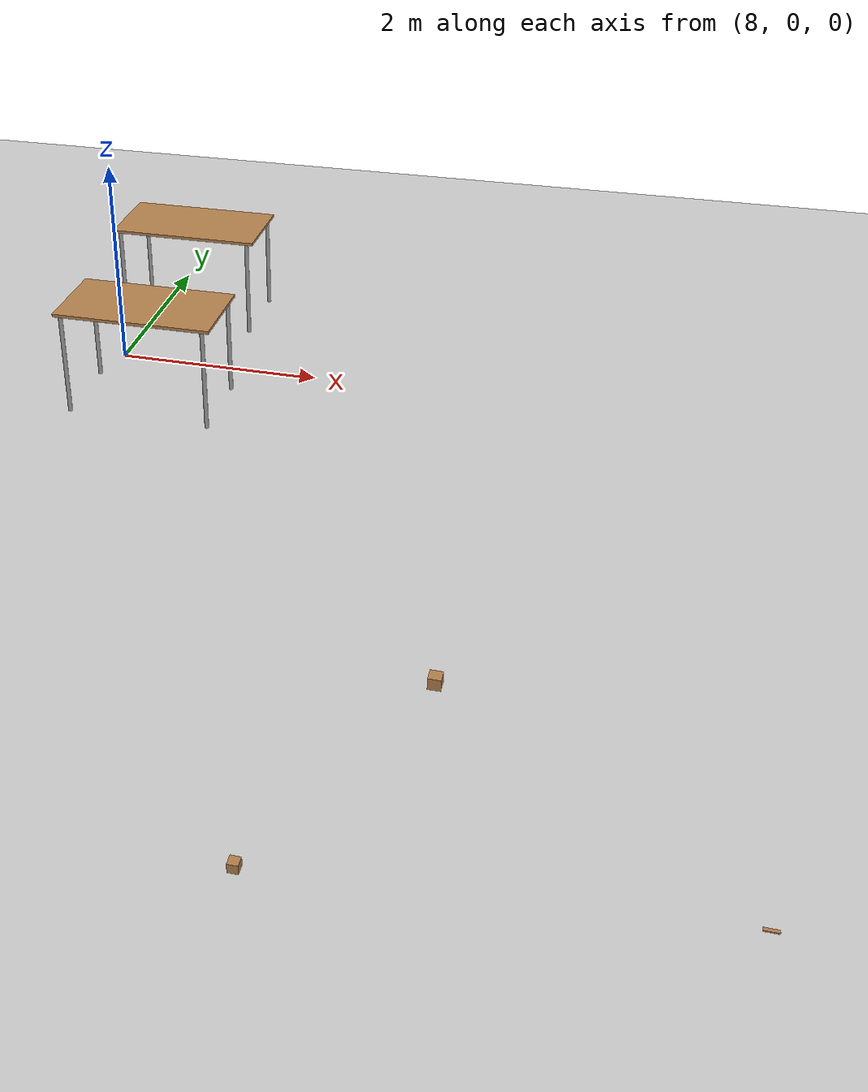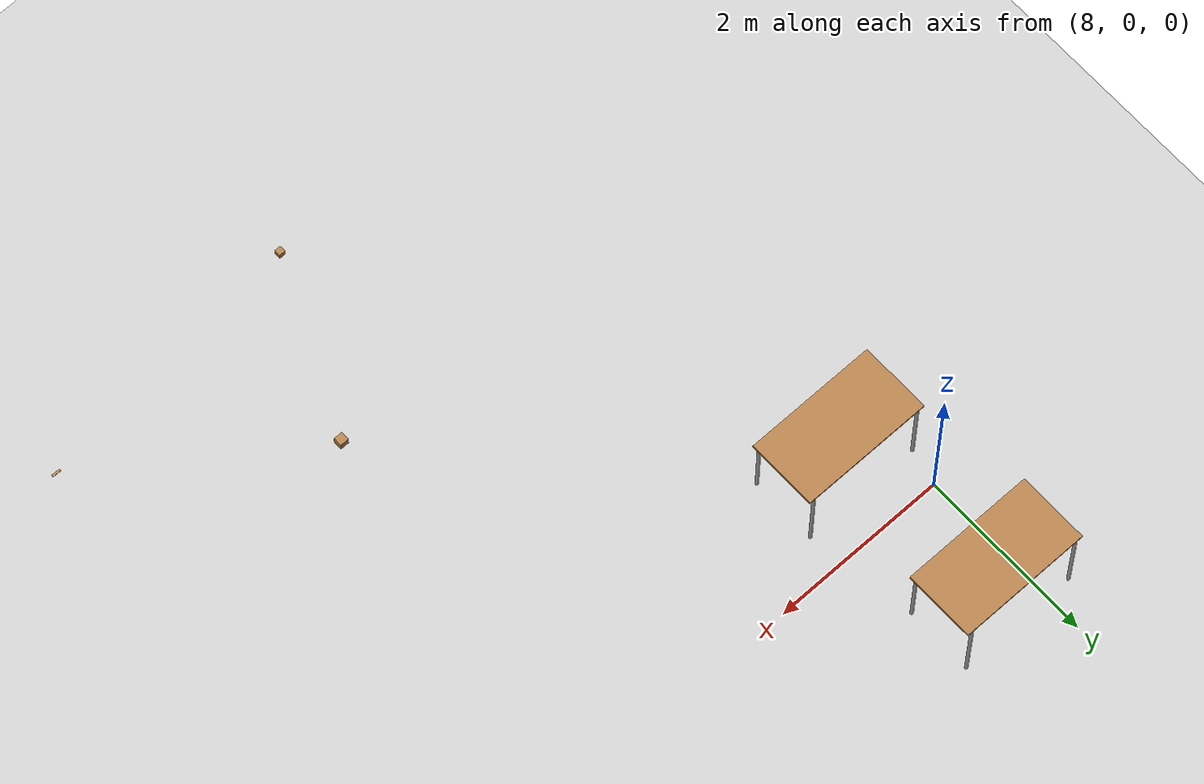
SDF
<sdf version="1.6">
 <world name="default">
  <model name="ground_plane">
   <static>1</static>
   <link name="link">
    <collision name="collision">
     <geometry><plane><normal>0 0 1</normal><size>100 100</size></plane></geometry>
     <surface>
      <contact><collide_bitmask>65535</collide_bitmask></contact>
      <friction><ode><mu>100</mu><mu2>50</mu2></ode></friction>
     </surface>
    </collision>
    <visual name="visual">
     <cast_shadows>0</cast_shadows>
     <geometry><plane><normal>0 0 1</normal><size>100 100</size></plane></geometry>
     <material>
      <script><uri>file://media/materials/scripts/gazebo.material</uri><name>Gazebo/Grey</name></script>
     </material>
    </visual>
   </link>
  </model>
  <model name="wood_cube_10cm">
   <link name="link">
    <pose>0 0 0.05 0 -0 0</pose>
    <inertial>
     <mass>0.5167</mass>
     <inertia>
      <ixx>0.000861167</ixx>
      <ixy>0</ixy>
      <ixz>0</ixz>
      <iyy>0.000861167</iyy>
      <iyz>0</iyz>
      <izz>0.000861167</izz>
     </inertia>
    </inertial>
    <collision name="collision">
     <geometry><box><size>0.1 0.1 0.1</size></box></geometry>
     <surface>
      <contact>
       <poissons_ratio>0.347</poissons_ratio>
       <elastic_modulus>8.8e+09</elastic_modulus>
       <ode><kp>100000</kp><kd>100</kd><max_vel>100</max_vel><min_depth>0.001</min_depth></ode>
      </contact>
      <friction>
       <torsional>
        <coefficient>1</coefficient>
        <use_patch_radius>0</use_patch_radius>
        <surface_radius>0.01</surface_radius>
       </torsional>
      </friction>
     </surface>
    </collision>
    <visual name="visual">
     <geometry><box><size>0.1 0.1 0.1</size></box></geometry>
     <material>
      <script><uri>file://media/materials/scripts/gazebo.material</uri><name>Gazebo/Wood</name></script>
     </material>
    </visual>
   </link>
   <pose>11.9568 -4.2046 -0.001013 0 -0 0</pose>
  </model>
  <model name="table">
   <static>1</static>
   <link name="link">
    <collision name="surface">
     <pose>0 0 1 0 -0 0</pose>
     <geometry><box><size>1.5 0.8 0.03</size></box></geometry>
     <surface><friction><ode><mu>0.6</mu><mu2>0.6</mu2></ode></friction></surface>
    </collision>
    <visual name="visual1">
     <pose>0 0 1 0 -0 0</pose>
     <geometry><box><size>1.5 0.8 0.03</size></box></geometry>
     <material>
      <script><uri>file://media/materials/scripts/gazebo.material</uri><name>Gazebo/Wood</name></script>
     </material>
    </visual>
    <collision name="front_left_leg">
     <pose>0.68 0.38 0.5 0 -0 0</pose>
     <geometry><cylinder><radius>0.02</radius><length>1</length></cylinder></geometry>
    </collision>
    <visual name="front_left_leg">
     <pose>0.68 0.38 0.5 0 -0 0</pose>
     <geometry><cylinder><radius>0.02</radius><length>1</length></cylinder></geometry>
     <material>
      <script><uri>file://media/materials/scripts/gazebo.material</uri><name>Gazebo/Grey</name></script>
     </material>
    </visual>
    <collision name="front_right_leg">
     <pose>0.68 -0.38 0.5 0 -0 0</pose>
     <geometry><cylinder><radius>0.02</radius><length>1</length></cylinder></geometry>
    </collision>
    <visual name="front_right_leg">
     <pose>0.68 -0.38 0.5 0 -0 0</pose>
     <geometry><cylinder><radius>0.02</radius><length>1</length></cylinder></geometry>
     <material>
      <script><uri>file://media/materials/scripts/gazebo.material</uri><name>Gazebo/Grey</name></script>
     </material>
    </visual>
    <collision name="back_right_leg">
     <pose>-0.68 -0.38 0.5 0 -0 0</pose>
     <geometry><cylinder><radius>0.02</radius><length>1</length></cylinder></geometry>
    </collision>
    <visual name="back_right_leg">
     <pose>-0.68 -0.38 0.5 0 -0 0</pose>
     <geometry><cylinder><radius>0.02</radius><length>1</length></cylinder></geometry>
     <material>
      <script><uri>file://media/materials/scripts/gazebo.material</uri><name>Gazebo/Grey</name></script>
     </material>
    </visual>
    <collision name="back_left_leg">
     <pose>-0.68 0.38 0.5 0 -0 0</pose>
     <geometry><cylinder><radius>0.02</radius><length>1</length></cylinder></geometry>
    </collision>
    <visual name="back_left_leg">
     <pose>-0.68 0.38 0.5 0 -0 0</pose>
     <geometry><cylinder><radius>0.02</radius><length>1</length></cylinder></geometry>
     <material>
      <script><uri>file://media/materials/scripts/gazebo.material</uri><name>Gazebo/Grey</name></script>
     </material>
    </visual>
   </link>
   <pose>8.39393 1.19948 0 0 -0 0</pose>
  </model>
  <model name="table_0">
   <static>1</static>
   <link name="link">
    <collision name="surface">
     <pose>0 0 1 0 -0 0</pose>
     <geometry><box><size>1.5 0.8 0.03</size></box></geometry>
     <surface><friction><ode><mu>0.6</mu><mu2>0.6</mu2></ode></friction></surface>
    </collision>
    <visual name="visual1">
     <pose>0 0 1 0 -0 0</pose>
     <geometry><box><size>1.5 0.8 0.03</size></box></geometry>
     <material>
      <script><uri>file://media/materials/scripts/gazebo.material</uri><name>Gazebo/Wood</name></script>
     </material>
    </visual>
    <collision name="front_left_leg">
     <pose>0.68 0.38 0.5 0 -0 0</pose>
     <geometry><cylinder><radius>0.02</radius><length>1</length></cylinder></geometry>
    </collision>
    <visual name="front_left_leg">
     <pose>0.68 0.38 0.5 0 -0 0</pose>
     <geometry><cylinder><radius>0.02</radius><length>1</length></cylinder></geometry>
     <material>
      <script><uri>file://media/materials/scripts/gazebo.material</uri><name>Gazebo/Grey</name></script>
     </material>
    </visual>
    <collision name="front_right_leg">
     <pose>0.68 -0.38 0.5 0 -0 0</pose>
     <geometry><cylinder><radius>0.02</radius><length>1</length></cylinder></geometry>
    </collision>
    <visual name="front_right_leg">
     <pose>0.68 -0.38 0.5 0 -0 0</pose>
     <geometry><cylinder><radius>0.02</radius><length>1</length></cylinder></geometry>
     <material>
      <script><uri>file://media/materials/scripts/gazebo.material</uri><name>Gazebo/Grey</name></script>
     </material>
    </visual>
    <collision name="back_right_leg">
     <pose>-0.68 -0.38 0.5 0 -0 0</pose>
     <geometry><cylinder><radius>0.02</radius><length>1</length></cylinder></geometry>
    </collision>
    <visual name="back_right_leg">
     <pose>-0.68 -0.38 0.5 0 -0 0</pose>
     <geometry><cylinder><radius>0.02</radius><length>1</length></cylinder></geometry>
     <material>
      <script><uri>file://media/materials/scripts/gazebo.material</uri><name>Gazebo/Grey</name></script>
     </material>
    </visual>
    <collision name="back_left_leg">
     <pose>-0.68 0.38 0.5 0 -0 0</pose>
     <geometry><cylinder><radius>0.02</radius><length>1</length></cylinder></geometry>
    </collision>
    <visual name="back_left_leg">
     <pose>-0.68 0.38 0.5 0 -0 0</pose>
     <geometry><cylinder><radius>0.02</radius><length>1</length></cylinder></geometry>
     <material>
      <script><uri>file://media/materials/scripts/gazebo.material</uri><name>Gazebo/Grey</name></script>
     </material>
    </visual>
   </link>
   <pose>8.57905 -0.790837 0 0 -0 0</pose>
  </model>
  <model name="wood_block_10_2_1cm">
   <link name="link">
    <pose>0 0 0.005 0 -0 0</pose>
    <inertial>
     <mass>0.0125</mass>
     <inertia>
      <ixx>7.55208e-07</ixx>
      <ixy>0</ixy>
      <ixz>0</ixz>
      <iyy>1.05208e-05</iyy>
      <iyz>0</iyz>
      <izz>1.10677e-05</izz>
     </inertia>
    </inertial>
    <collision name="collision">
     <geometry><box><size>0.1 0.025 0.01</size></box></geometry>
     <surface>
      <contact>
       <poissons_ratio>0.347</poissons_ratio>
       <elastic_modulus>8.8e+09</elastic_modulus>
       <ode><kp>100000</kp><kd>1</kd><max_vel>1</max_vel><min_depth>0.001</min_depth></ode>
      </contact>
      <friction>
       <torsional>
        <coefficient>1</coefficient>
        <use_patch_radius>0</use_patch_radius>
        <surface_radius>0.05</surface_radius>
       </torsional>
      </friction>
     </surface>
    </collision>
    <visual name="visual">
     <geometry><box><size>0.1 0.025 0.01</size></box></geometry>
     <material>
      <script><uri>file://media/materials/scripts/gazebo.material</uri><name>Gazebo/Wood</name></script>
     </material>
    </visual>
   </link>
   <pose>14.2192 -5.82836 -0.001 0 -0 0</pose>
  </model>
  <model name="wood_cube_7_5cm">
   <link name="link">
    <pose>0 0 0.0375 0 -0 0</pose>
    <inertial>
     <mass>0.2249</mass>
     <inertia>
      <ixx>0.000210844</ixx>
      <ixy>0</ixy>
      <ixz>0</ixz>
      <iyy>0.000210844</iyy>
      <iyz>0</iyz>
      <izz>0.000210844</izz>
     </inertia>
    </inertial>
    <collision name="collision">
     <geometry><box><size>0.075 0.075 0.075</size></box></geometry>
     <surface>
      <contact>
       <poissons_ratio>0.347</poissons_ratio>
       <elastic_modulus>8.8e+09</elastic_modulus>
       <ode><kp>100000</kp><kd>100</kd><max_vel>100</max_vel><min_depth>0.001</min_depth></ode>
      </contact>
      <friction>
       <torsional>
        <coefficient>1</coefficient>
        <use_patch_radius>0</use_patch_radius>
        <surface_radius>0.01</surface_radius>
       </torsional>
      </friction>
     </surface>
    </collision>
    <visual name="visual">
     <geometry><box><size>0.075 0.075 0.075</size></box></geometry>
     <material>
      <script><uri>file://media/materials/scripts/gazebo.material</uri><name>Gazebo/Wood</name></script>
     </material>
    </visual>
   </link>
   <pose>11.0656 -6.12525 -0.001005 0 -0 0</pose>
  </model>
 </world>
</sdf>
